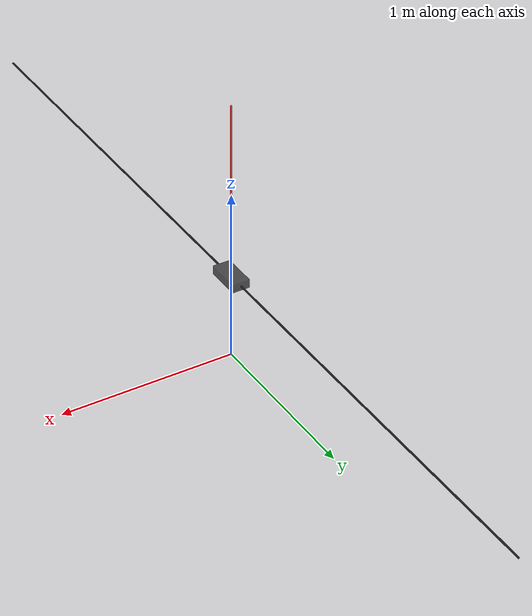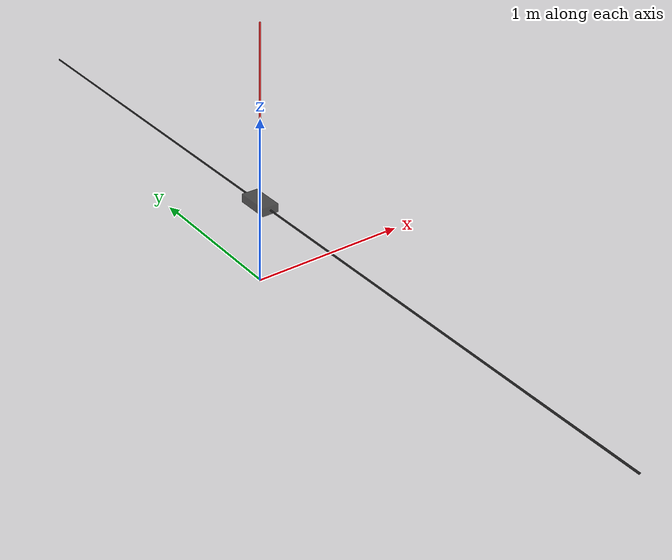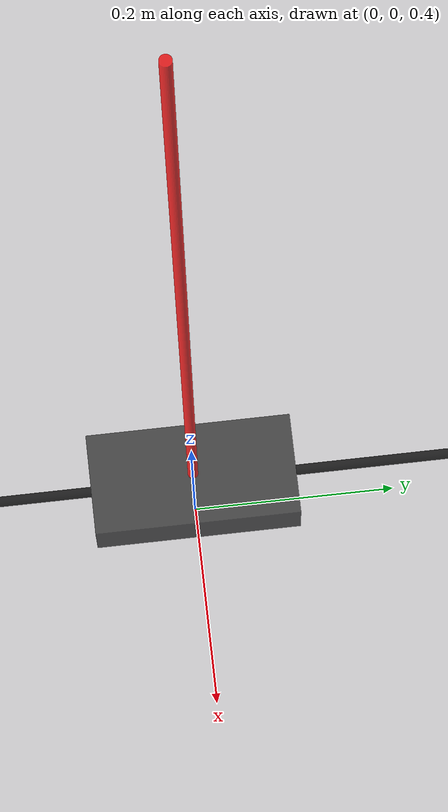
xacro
<?xml version='1.0' encoding='UTF-8'?>

<robot name="cartpole_xacro" xmlns:xacro="http://www.ros.org/wiki/xacro">

  <!-- CartPole properties match the OpenAI Gym CartPole-v1 environment -->
  <!-- https://github.com/openai/gym/blob/master/gym/envs/classic_control/cartpole.py -->
  <xacro:property name="rail_height" value="0.5" />
  <xacro:property name="rail_length" value="5" />
  <xacro:property name="rail_radius" value="0.005" />
  <xacro:property name="rail_mass" value="5" />

  <xacro:property name="cart_size_x" value="0.1" />
  <xacro:property name="cart_size_y" value="0.2" />
  <xacro:property name="cart_size_z" value="0.05" />
  <xacro:property name="cart_mass" value="1.0" />

  <xacro:property name="pole_length" value="1.0" />
  <xacro:property name="pole_radius" value="0.005" />
  <xacro:property name="pole_mass" value="0.1" />
  <xacro:property name="theta_0" value="0" />

  <xacro:property name="epsilon" value="1e-09"/>

  <xacro:property name="rgba_black" value="0 0 0 0.8"/>
  <xacro:property name="rgba_white" value="1 1 1 0.8"/>
  <xacro:property name="rgba_grey" value="0.2 0.2 0.2 0.8"/>
  <xacro:property name="rgba_red" value="1 0 0 0.8"/>

  <xacro:macro name="box_inertia" params="mass dimx dimy dimz xyz rpy">
    <inertial>
      <origin xyz="${xyz}" rpy="${rpy}"/>
      <mass value="${mass}"/>
      <xacro:property name="ixx" value="${1/12*mass*(dimz*dimz+dimy*dimy)}"/>
      <xacro:property name="iyy" value="${1/12*mass*(dimx*dimx+dimy*dimy)}"/>
      <xacro:property name="izz" value="${1/12*mass*(dimx*dimx+dimz*dimz)}"/>
      <inertia ixx="${ixx}"  ixy="0"  ixz="0" iyy="${iyy}" iyz="0" izz="${izz}" />
    </inertial>
  </xacro:macro>

  <xacro:macro name="cylinder_inertia_around_edge" params="mass rotaxis length xyz rpy">
    <inertial>
      <origin xyz="${xyz}" rpy="${rpy}"/>
      <mass value="${mass}"/>
      <xacro:property name="ixx" value="${1/3*mass*length*length}"/>
      <xacro:property name="iyy" value="${1/3*mass*length*length}"/>
      <xacro:property name="izz" value="${1/3*mass*length*length}"/>
      <xacro:if value="${rotaxis == 'x'}">
        <xacro:property name="ixx" value="${epsilon}"/>
      </xacro:if>
      <xacro:if value="${rotaxis == 'y'}">
        <xacro:property name="iyy" value="${epsilon}"/>
      </xacro:if>
      <xacro:if value="${rotaxis == 'z'}">
        <xacro:property name="izz" value="${epsilon}"/>
      </xacro:if>
      <inertia ixx="${ixx}"  ixy="0"  ixz="0" iyy="${iyy}" iyz="0" izz="${izz}" />
    </inertial>
  </xacro:macro>

  <xacro:macro name="mymaterial" params="name rgba">
    <material name="${name}">
        <color rgba="${rgba}"/>
    </material>
  </xacro:macro>

  <xacro:macro name="gzmaterial" params="reference rgba">
    <gazebo reference="${reference}">
      <visual>
        <material>
            <ambient>${rgba}</ambient>
            <diffuse>${rgba}</diffuse>
            <specular>${rgba}</specular>
            <emissive>${rgba}</emissive>
            <script>
              <uri></uri>
              <name></name>
            </script>
        </material>
        </visual>
    </gazebo>
  </xacro:macro>

  <!-- COLORS -->

  <material name="black">
    <color rgba="${rgba_black}"/>
  </material>
  <material name="white">
    <color rgba="${rgba_white}"/>
  </material>
  <material name="grey">
    <color rgba="${rgba_grey}"/>
  </material>

  <xacro:gzmaterial reference="rail" rgba="${rgba_black}"/>
  <xacro:gzmaterial reference="cart" rgba="${rgba_grey}"/>
  <xacro:gzmaterial reference="pole" rgba="${rgba_red}"/>

  <!-- LINKS -->

  <link name="world"/>

  <link name="rail">
    <inertial>
      <!-- This link is fixed, inertial values are not relevant -->
      <origin xyz="0 0 0" rpy="0 0 0"/>
      <mass value="${rail_mass}"/>
      <inertia ixx="100"  ixy="0"  ixz="0" iyy="100" iyz="0" izz="100" />
    </inertial>
    <visual>
      <geometry>
        <cylinder length="${rail_length}" radius="${rail_radius}"/>
      </geometry>
      <origin xyz="0 0 0" rpy="${pi/2} 0 0"/>
      <xacro:mymaterial name="black" rgba="${rgba_black}" />
    </visual>
  </link>

  <link name="cart">
    <xacro:box_inertia mass="${cart_mass}" dimx="${cart_size_x}" dimy="${cart_size_y}" dimz="${cart_size_z}" xyz="0 0 0" rpy="0 0 0"/>
    <visual>
      <geometry>
        <box size="${cart_size_x} ${cart_size_y} ${cart_size_z}"/>
      </geometry>
      <origin xyz="0 0 0" rpy="0 0 0"/>
      <xacro:mymaterial name="grey" rgba="${rgba_grey}" />
    </visual>
  </link>

  <link name="pole">
    <xacro:cylinder_inertia_around_edge mass="${pole_mass}" rotaxis="x" length="${pole_length}" xyz="0 0 ${pole_length/2}" rpy="0 0 0"/>
    <visual>
      <geometry>
        <cylinder length="${pole_length}" radius="${pole_radius}"/>
      </geometry>
      <origin xyz="0 0 ${pole_length/2}" rpy="0 0 0"/>
      <xacro:mymaterial name="red" rgba="${rgba_red}" />
    </visual>
  </link>

  <!-- JOINTS -->

  <!--  http://gazebosim.org/tutorials/?tut=ros_urdf#RigidlyFixingAModeltotheWorld-->
  <joint name="world_to_rail" type="fixed">
    <parent link="world"/>
    <child link="rail"/>
    <origin xyz="0 0 ${rail_height}" rpy="0 0 0" />
  </joint>

  <joint name="linear" type="prismatic">
    <parent link="rail" />
    <child link="cart" />
    <axis xyz="0 1 0" />
    <origin xyz="0 0 0" rpy="0 0 0" />
    <limit lower="-${rail_length/2-cart_size_y/2}" upper="${rail_length/2-cart_size_y/2}" effort="500" velocity="10"/>
  </joint>

  <joint name="pivot" type="continuous">
    <parent link="cart" />
    <child link="pole" />
    <axis xyz="1 0 0"/>
    <origin xyz="0 0 ${cart_size_z/2}" rpy="${theta_0} 0 0" />
    <limit lower="-${pi/2}" upper="${pi/2}" effort="500" velocity="10"/>
  </joint>

</robot>
